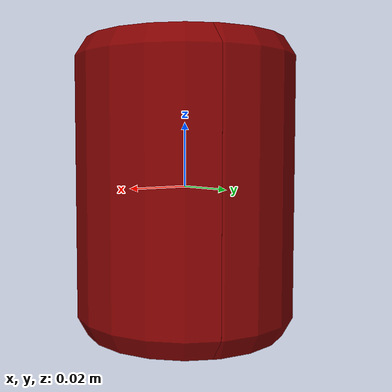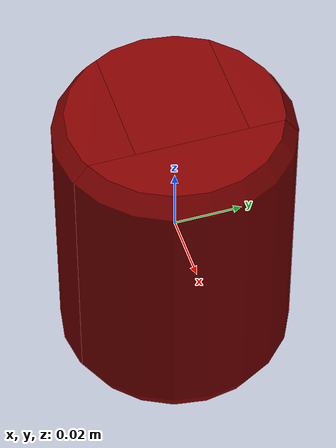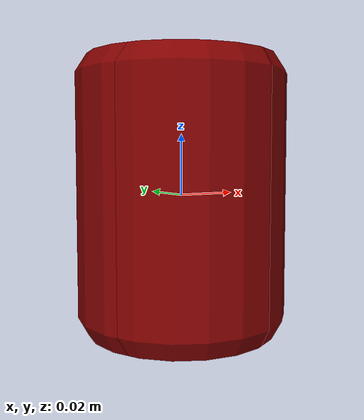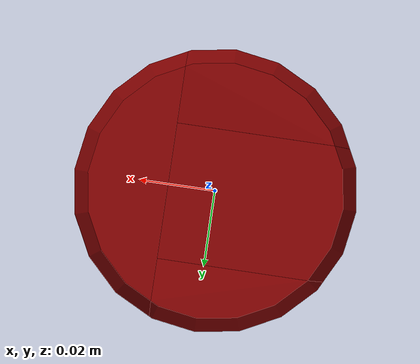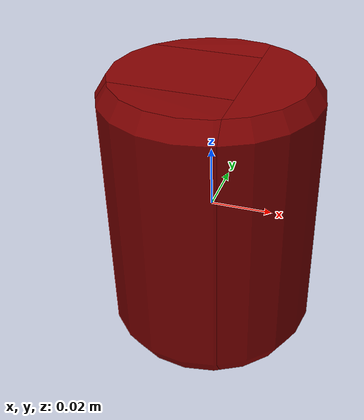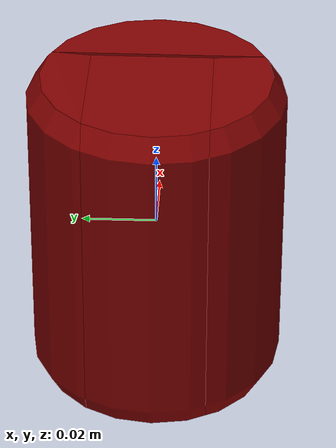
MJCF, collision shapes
<mujoco model="can_25">
  <asset>
    <mesh file="visual/model_normalized_0.obj" name="model_normalized_0_vis" scale="0.09000000000000001 0.09000000000000001 0.09000000000000001" refquat="-1.1102230246251563e-16 -1.1102230246251563e-16 1.2325951644078307e-32 -0.9999999999999998"/>
    <texture type="2d" name="image0" file="visual/image0.png"/>
    <material name="material.100" texture="image0" specular="0.5" shininess="0.25"/>
    <mesh file="collision/collision_mesh_collision_0.obj" name="can_collision_mesh_0" scale="0.09000000000000001 0.09000000000000001 0.09000000000000001" refquat="-1.1102230246251563e-16 -1.1102230246251563e-16 1.2325951644078307e-32 -0.9999999999999998"/>
    <mesh file="collision/collision_mesh_collision_1.obj" name="can_collision_mesh_1" scale="0.09000000000000001 0.09000000000000001 0.09000000000000001" refquat="-1.1102230246251563e-16 -1.1102230246251563e-16 1.2325951644078307e-32 -0.9999999999999998"/>
    <mesh file="collision/collision_mesh_collision_2.obj" name="can_collision_mesh_2" scale="0.09000000000000001 0.09000000000000001 0.09000000000000001" refquat="-1.1102230246251563e-16 -1.1102230246251563e-16 1.2325951644078307e-32 -0.9999999999999998"/>
    <mesh file="collision/collision_mesh_collision_3.obj" name="can_collision_mesh_3" scale="0.09000000000000001 0.09000000000000001 0.09000000000000001" refquat="-1.1102230246251563e-16 -1.1102230246251563e-16 1.2325951644078307e-32 -0.9999999999999998"/>
  </asset>
  <default>
    <default class="region">
      <geom group="1" conaffinity="0" contype="0" rgba="0 1 0 0"/>
    </default>
    <default class="collision">
      <geom group="0" rgba="0.5 0 0 0.5" density="1000.0"/>
    </default>
  </default>
  <worldbody>
    <body>
      <body name="object">
        <geom solimp="0.998 0.998 0.001" solref="0.001 1" density="100" friction="0.95 0.3 0.1" type="mesh" mesh="model_normalized_0_vis" conaffinity="0" contype="0" group="1" material="material.100"/>
        <geom class="region" name="reg_bbox" type="box" pos="0.0 -7.964999050488754e-07 0.0" size="0.03414378192974354 0.03414429672968216 0.04500000000000001"/>
        <geom mesh="can_collision_mesh_0" type="mesh" class="collision"/>
        <geom mesh="can_collision_mesh_1" type="mesh" class="collision"/>
        <geom mesh="can_collision_mesh_2" type="mesh" class="collision"/>
        <geom mesh="can_collision_mesh_3" type="mesh" class="collision"/>
      </body>
    </body>
  </worldbody>
</mujoco>
